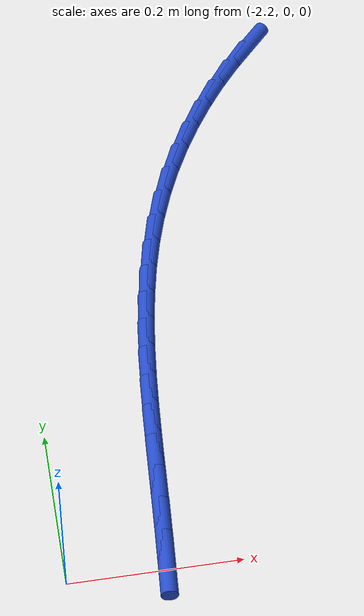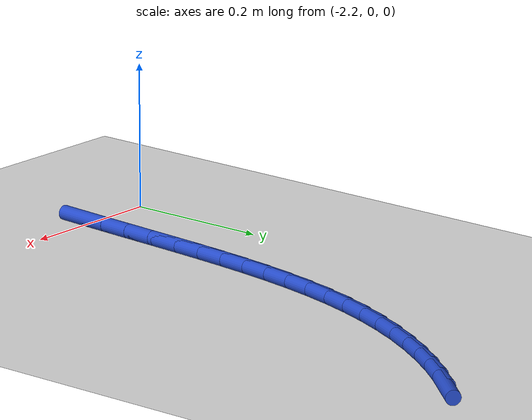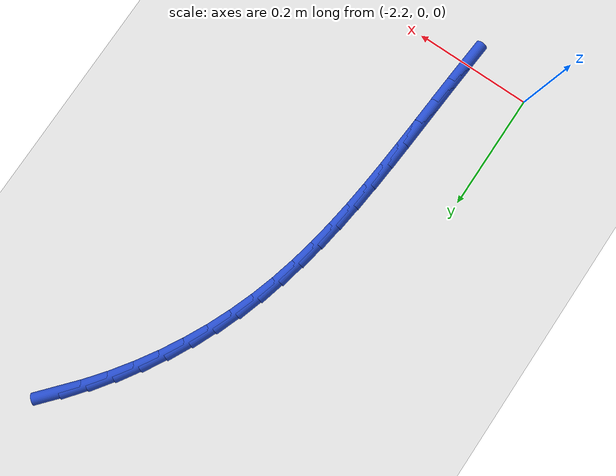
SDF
<sdf version="1.6">
 <world name="default">
  <model name="ground_plane">
   <static>1</static>
   <link name="link">
    <collision name="collision">
     <geometry><plane><normal>0 0 1</normal><size>100 100</size></plane></geometry>
     <surface><friction><ode><mu>100</mu><mu2>50</mu2></ode></friction></surface>
    </collision>
    <visual name="visual">
     <cast_shadows>0</cast_shadows>
     <geometry><plane><normal>0 0 1</normal><size>100 100</size></plane></geometry>
     <material>
      <script><uri>file://media/materials/scripts/gazebo.material</uri><name>Gazebo/WhiteGlow</name></script>
     </material>
    </visual>
   </link>
  </model>
  <model name="line">
   <link name="link_59">
    <pose>-1.8450973321621358 0.8036301155149089 0.01 0 1.57 0.8592060650942486</pose>
    <collision name="collision">
     <geometry><cylinder><radius>0.01</radius><length>0.08</length></cylinder></geometry>
    </collision>
    <visual name="visual">
     <material>
      <script><name>Gazebo/Blue</name><uri>file://media/materials/scripts/gazebo.material</uri></script>
     </material>
     <geometry><cylinder><radius>0.01</radius><length>0.08</length></cylinder></geometry>
    </visual>
   </link>
   <link name="link_60">
    <pose>-1.8734200637000045 0.770784457466101 0.01 0 1.57 0.9114390767024368</pose>
    <collision name="collision">
     <geometry><cylinder><radius>0.01</radius><length>0.08</length></cylinder></geometry>
    </collision>
    <visual name="visual">
     <material>
      <script><name>Gazebo/Blue</name><uri>file://media/materials/scripts/gazebo.material</uri></script>
     </material>
     <geometry><cylinder><radius>0.01</radius><length>0.08</length></cylinder></geometry>
    </visual>
   </link>
   <link name="link_61">
    <pose>-1.8999463352491806 0.7365603454153693 0.01 0 1.57 0.9630806245628225</pose>
    <collision name="collision">
     <geometry><cylinder><radius>0.01</radius><length>0.08</length></cylinder></geometry>
    </collision>
    <visual name="visual">
     <material>
      <script><name>Gazebo/Blue</name><uri>file://media/materials/scripts/gazebo.material</uri></script>
     </material>
     <geometry><cylinder><radius>0.01</radius><length>0.08</length></cylinder></geometry>
    </visual>
   </link>
   <link name="link_62">
    <pose>-1.9246207866417273 0.7010842915701726 0.01 0 1.57 1.014334601743101</pose>
    <collision name="collision">
     <geometry><cylinder><radius>0.01</radius><length>0.08</length></cylinder></geometry>
    </collision>
    <visual name="visual">
     <material>
      <script><name>Gazebo/Blue</name><uri>file://media/materials/scripts/gazebo.material</uri></script>
     </material>
     <geometry><cylinder><radius>0.01</radius><length>0.08</length></cylinder></geometry>
    </visual>
   </link>
   <link name="link_63">
    <pose>-1.9473880577097087 0.664482808137969 0.01 0 1.57 1.0654143263387625</pose>
    <collision name="collision">
     <geometry><cylinder><radius>0.01</radius><length>0.08</length></cylinder></geometry>
    </collision>
    <visual name="visual">
     <material>
      <script><name>Gazebo/Blue</name><uri>file://media/materials/scripts/gazebo.material</uri></script>
     </material>
     <geometry><cylinder><radius>0.01</radius><length>0.08</length></cylinder></geometry>
    </visual>
   </link>
   <link name="link_64">
    <pose>-1.968192788285188 0.6268824073262174 0.01 0 1.57 1.116540724287314</pose>
    <collision name="collision">
     <geometry><cylinder><radius>0.01</radius><length>0.08</length></cylinder></geometry>
    </collision>
    <visual name="visual">
     <material>
      <script><name>Gazebo/Blue</name><uri>file://media/materials/scripts/gazebo.material</uri></script>
     </material>
     <geometry><cylinder><radius>0.01</radius><length>0.08</length></cylinder></geometry>
    </visual>
   </link>
   <link name="link_65">
    <pose>-1.9869796182002288 0.5884096013423755 0.01 0 1.57 1.1679407898314</pose>
    <collision name="collision">
     <geometry><cylinder><radius>0.01</radius><length>0.08</length></cylinder></geometry>
    </collision>
    <visual name="visual">
     <material>
      <script><name>Gazebo/Blue</name><uri>file://media/materials/scripts/gazebo.material</uri></script>
     </material>
     <geometry><cylinder><radius>0.01</radius><length>0.08</length></cylinder></geometry>
    </visual>
   </link>
   <link name="link_66">
    <pose>-2.0036931872868946 0.5491909023939018 0.01 0 1.57 1.21984610748962</pose>
    <collision name="collision">
     <geometry><cylinder><radius>0.01</radius><length>0.08</length></cylinder></geometry>
    </collision>
    <visual name="visual">
     <material>
      <script><name>Gazebo/Blue</name><uri>file://media/materials/scripts/gazebo.material</uri></script>
     </material>
     <geometry><cylinder><radius>0.01</radius><length>0.08</length></cylinder></geometry>
    </visual>
   </link>
   <link name="link_67">
    <pose>-2.018278135377249 0.5093528226882549 0.01 0 1.57 1.2719468618733722</pose>
    <collision name="collision">
     <geometry><cylinder><radius>0.01</radius><length>0.08</length></cylinder></geometry>
    </collision>
    <visual name="visual">
     <material>
      <script><name>Gazebo/Blue</name><uri>file://media/materials/scripts/gazebo.material</uri></script>
     </material>
     <geometry><cylinder><radius>0.01</radius><length>0.08</length></cylinder></geometry>
    </visual>
   </link>
   <link name="link_68">
    <pose>-2.0307059994684904 0.46901257772643123 0.01 0 1.57 1.3205071918890698</pose>
    <collision name="collision">
     <geometry><cylinder><radius>0.01</radius><length>0.08</length></cylinder></geometry>
    </collision>
    <visual name="visual">
     <material>
      <script><name>Gazebo/Blue</name><uri>file://media/materials/scripts/gazebo.material</uri></script>
     </material>
     <geometry><cylinder><radius>0.01</radius><length>0.08</length></cylinder></geometry>
    </visual>
   </link>
   <link name="link_69">
    <pose>-2.0411337807512457 0.42822327937037247 0.01 0 1.57 1.3636110490072781</pose>
    <collision name="collision">
     <geometry><cylinder><radius>0.01</radius><length>0.08</length></cylinder></geometry>
    </collision>
    <visual name="visual">
     <material>
      <script><name>Gazebo/Blue</name><uri>file://media/materials/scripts/gazebo.material</uri></script>
     </material>
     <geometry><cylinder><radius>0.01</radius><length>0.08</length></cylinder></geometry>
    </visual>
   </link>
   <link name="link_70">
    <pose>-2.0497966647417125 0.3870110159380493 0.01 0 1.57 1.4010078977996137</pose>
    <collision name="collision">
     <geometry><cylinder><radius>0.01</radius><length>0.08</length></cylinder></geometry>
    </collision>
    <visual name="visual">
     <material>
      <script><name>Gazebo/Blue</name><uri>file://media/materials/scripts/gazebo.material</uri></script>
     </material>
     <geometry><cylinder><radius>0.01</radius><length>0.08</length></cylinder></geometry>
    </visual>
   </link>
   <link name="link_71">
    <pose>-2.056930111427281 0.345401780879511 0.01 0 1.57 1.432582686012051</pose>
    <collision name="collision">
     <geometry><cylinder><radius>0.01</radius><length>0.08</length></cylinder></geometry>
    </collision>
    <visual name="visual">
     <material>
      <script><name>Gazebo/Blue</name><uri>file://media/materials/scripts/gazebo.material</uri></script>
     </material>
     <geometry><cylinder><radius>0.01</radius><length>0.08</length></cylinder></geometry>
    </visual>
   </link>
   <link name="link_72">
    <pose>-2.0627695807953437 0.3034215676448083 0.01 0 1.57 1.4583155238267624</pose>
    <collision name="collision">
     <geometry><cylinder><radius>0.01</radius><length>0.08</length></cylinder></geometry>
    </collision>
    <visual name="visual">
     <material>
      <script><name>Gazebo/Blue</name><uri>file://media/materials/scripts/gazebo.material</uri></script>
     </material>
     <geometry><cylinder><radius>0.01</radius><length>0.08</length></cylinder></geometry>
    </visual>
   </link>
   <link name="link_73">
    <pose>-2.0675505328332924 0.26109636968399014 0.01 0 1.57 1.4782494028792281</pose>
    <collision name="collision">
     <geometry><cylinder><radius>0.01</radius><length>0.08</length></cylinder></geometry>
    </collision>
    <visual name="visual">
     <material>
      <script><name>Gazebo/Blue</name><uri>file://media/materials/scripts/gazebo.material</uri></script>
     </material>
     <geometry><cylinder><radius>0.01</radius><length>0.08</length></cylinder></geometry>
    </visual>
   </link>
   <link name="link_74">
    <pose>-2.0715084275285185 0.21845218044710726 0.01 0 1.57 1.4924632712090597</pose>
    <collision name="collision">
     <geometry><cylinder><radius>0.01</radius><length>0.08</length></cylinder></geometry>
    </collision>
    <visual name="visual">
     <material>
      <script><name>Gazebo/Blue</name><uri>file://media/materials/scripts/gazebo.material</uri></script>
     </material>
     <geometry><cylinder><radius>0.01</radius><length>0.08</length></cylinder></geometry>
    </visual>
   </link>
   <link name="link_75">
    <pose>-2.0748787248684133 0.175514993384209 0.01 0 1.57 1.501051598069755</pose>
    <collision name="collision">
     <geometry><cylinder><radius>0.01</radius><length>0.08</length></cylinder></geometry>
    </collision>
    <visual name="visual">
     <material>
      <script><name>Gazebo/Blue</name><uri>file://media/materials/scripts/gazebo.material</uri></script>
     </material>
     <geometry><cylinder><radius>0.01</radius><length>0.08</length></cylinder></geometry>
    </visual>
   </link>
   <link name="link_76">
    <pose>-2.077896884840369 0.1323108019453449 0.01 0 1.57 1.5041104744818328</pose>
    <collision name="collision">
     <geometry><cylinder><radius>0.01</radius><length>0.08</length></cylinder></geometry>
    </collision>
    <visual name="visual">
     <material>
      <script><name>Gazebo/Blue</name><uri>file://media/materials/scripts/gazebo.material</uri></script>
     </material>
     <geometry><cylinder><radius>0.01</radius><length>0.08</length></cylinder></geometry>
    </visual>
   </link>
   <link name="link_77">
    <pose>-2.080798367431777 0.08886559958056553 0.01 0 1.57 1.501729765323738</pose>
    <collision name="collision">
     <geometry><cylinder><radius>0.01</radius><length>0.08</length></cylinder></geometry>
    </collision>
    <visual name="visual">
     <material>
      <script><name>Gazebo/Blue</name><uri>file://media/materials/scripts/gazebo.material</uri></script>
     </material>
     <geometry><cylinder><radius>0.01</radius><length>0.08</length></cylinder></geometry>
    </visual>
   </link>
   <link name="link_78">
    <pose>-2.083818632630029 0.04520537973991995 0.01 0 1.57 1.4953007910001141</pose>
    <collision name="collision">
     <geometry><cylinder><radius>0.01</radius><length>0.08</length></cylinder></geometry>
    </collision>
    <visual name="visual">
     <material>
      <script><name>Gazebo/Blue</name><uri>file://media/materials/scripts/gazebo.material</uri></script>
     </material>
     <geometry><cylinder><radius>0.01</radius><length>0.08</length></cylinder></geometry>
    </visual>
   </link>
   <link name="link_79">
    <pose>-2.0871349137902775 0.0013620151663336316 0.01 0 1.57 1.4919558046745152</pose>
    <collision name="collision">
     <geometry><cylinder><radius>0.01</radius><length>0.08</length></cylinder></geometry>
    </collision>
    <visual name="visual">
     <material>
      <script><name>Gazebo/Blue</name><uri>file://media/materials/scripts/gazebo.material</uri></script>
     </material>
     <geometry><cylinder><radius>0.01</radius><length>0.08</length></cylinder></geometry>
    </visual>
   </link>
  </model>
 </world>
</sdf>
